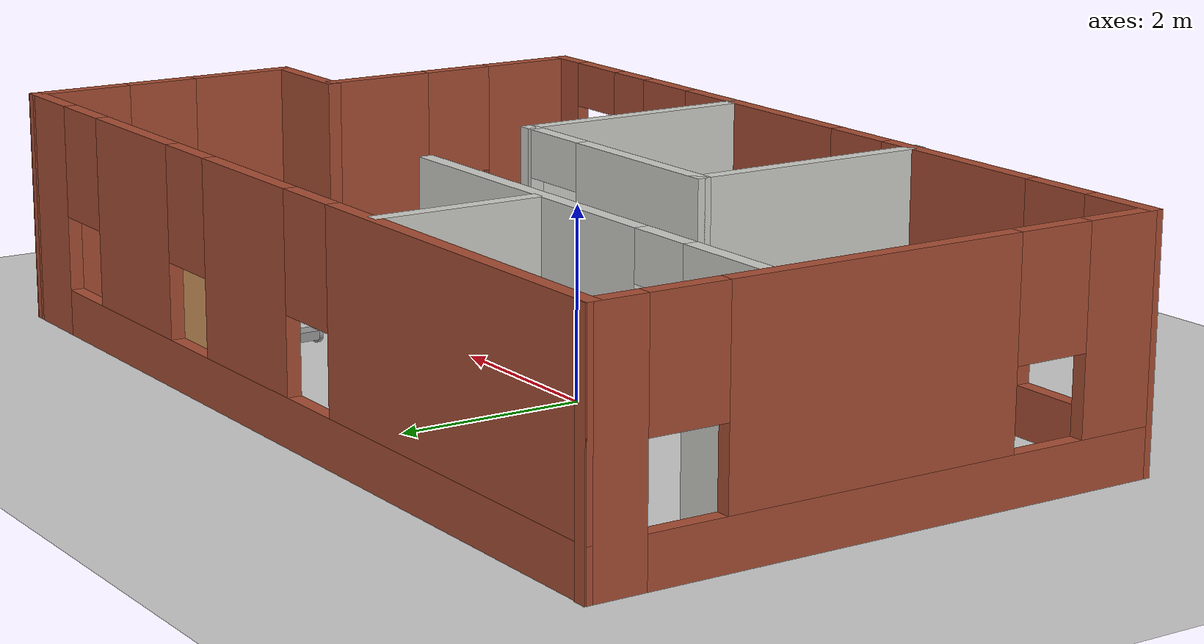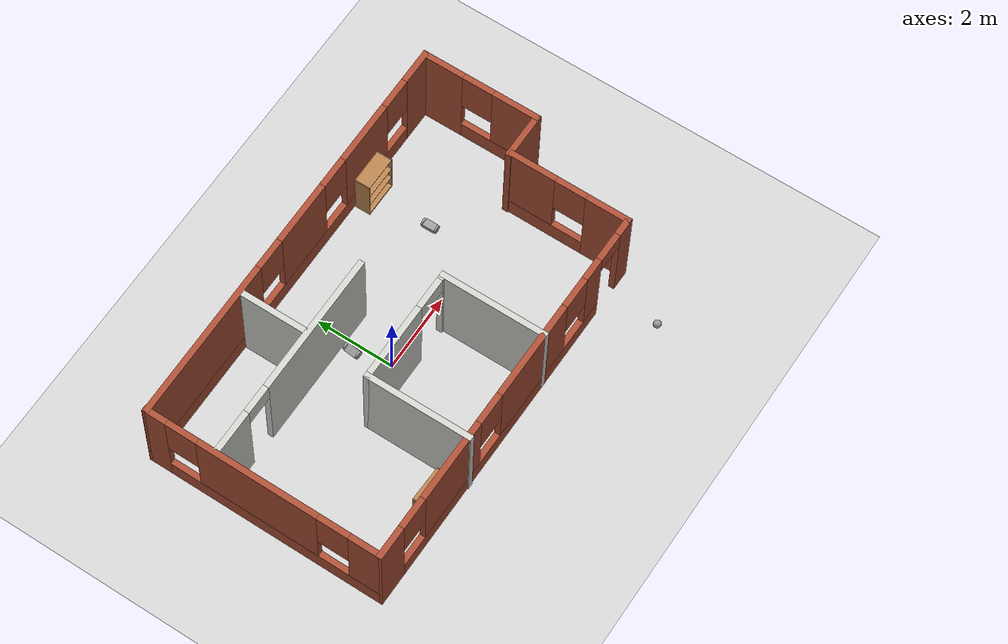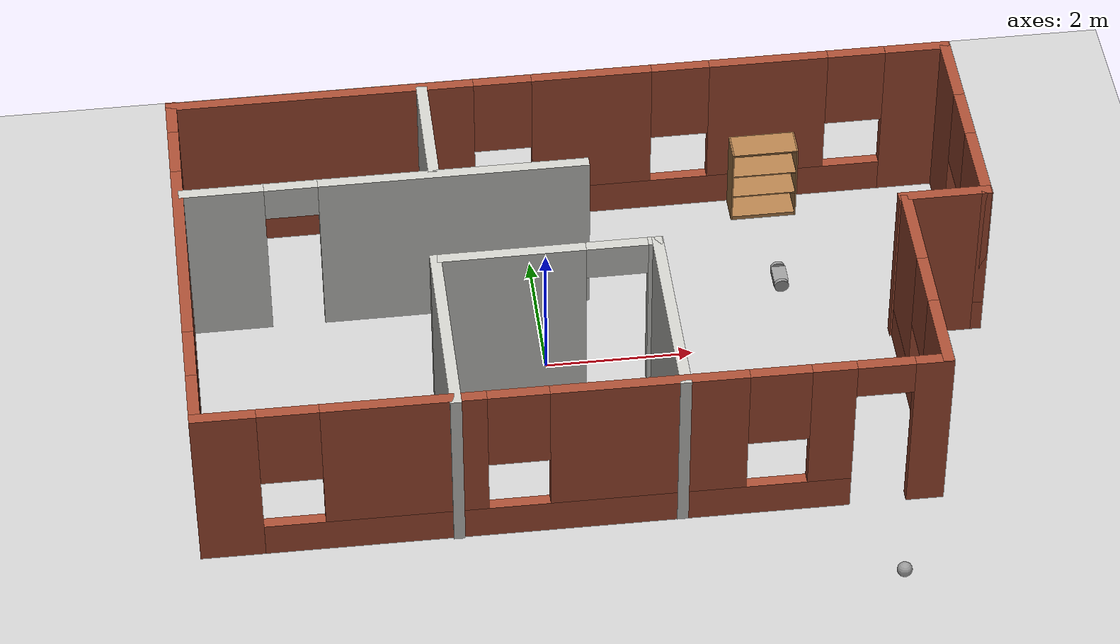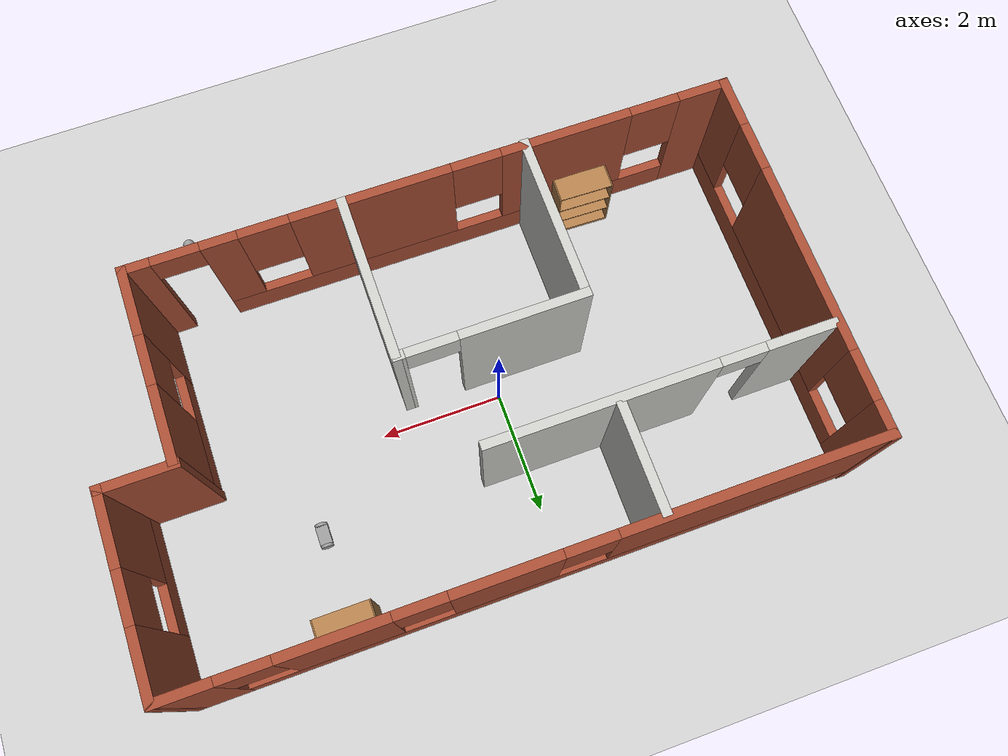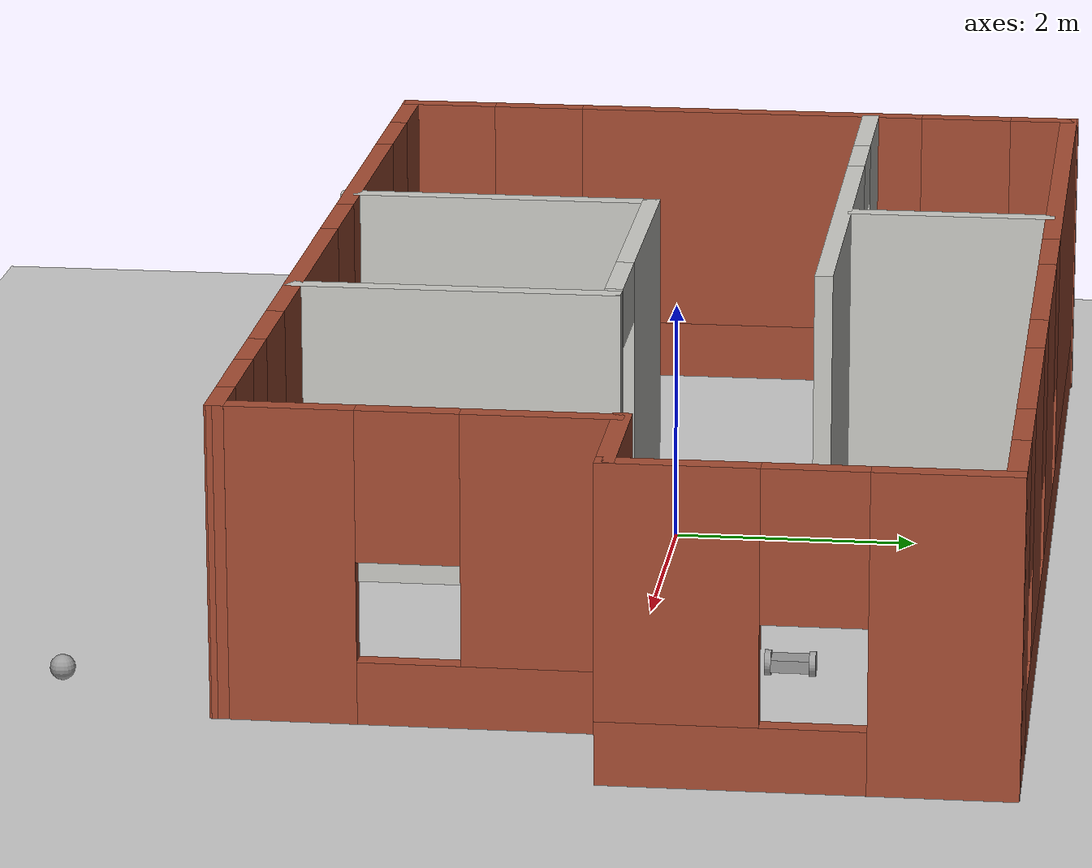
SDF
<sdf version="1.6">
 <world name="default">
  <plugin name="hello" filename="libhello.so"/>
  <light name="sun" type="directional">
   <pose>0 0 10 0 -0 0</pose>
   <diffuse>0.8 0.8 0.8 1</diffuse>
   <specular>0.2 0.2 0.2 1</specular>
   <attenuation>
    <range>1000</range>
    <constant>0.9</constant>
    <linear>0.01</linear>
    <quadratic>0.001</quadratic>
   </attenuation>
   <direction>-0.5 0.1 -0.9</direction>
  </light>
  <model name="ground_plane">
   <static>1</static>
   <link name="link">
    <collision name="collision">
     <geometry><plane><normal>0 0 1</normal><size>100 100</size></plane></geometry>
     <surface><friction><ode><mu>100</mu><mu2>50</mu2></ode></friction></surface>
    </collision>
    <visual name="visual">
     <cast_shadows>0</cast_shadows>
     <geometry><plane><normal>0 0 1</normal><size>100 100</size></plane></geometry>
     <material>
      <script><uri>file://media/materials/scripts/gazebo.material</uri><name>Gazebo/Grey</name></script>
     </material>
    </visual>
   </link>
  </model>
  <gravity>0 0 -9.8</gravity>
  <magnetic_field>6e-06 2.3e-05 -4.2e-05</magnetic_field>
  <atmosphere type="adiabatic"/>
  <physics name="default_physics" default="0" type="ode">
   <max_step_size>0.001</max_step_size>
   <real_time_factor>1</real_time_factor>
   <real_time_update_rate>1000</real_time_update_rate>
  </physics>
  <scene><ambient>0.4 0.4 0.4 1</ambient><background>0.7 0.7 0.7 1</background><shadows>1</shadows></scene>
  <spherical_coordinates>
   <surface_model>EARTH_WGS84</surface_model>
   <latitude_deg>0</latitude_deg>
   <longitude_deg>0</longitude_deg>
   <elevation>0</elevation>
   <heading_deg>0</heading_deg>
  </spherical_coordinates>
  <model name="building">
   <pose>0.56892 0.03593 0 0 -0 0</pose>
   <link name="Wall_1">
    <pose>5.34876 1.53922 0 0 0 -1.5708</pose>
    <visual name="Wall_1_Visual_0">
     <pose>-1.00974 0 1.25 0 -0 0</pose>
     <geometry><box><size>1.12727 0.15 2.5</size></box></geometry>
     <material>
      <script><uri>file://media/materials/scripts/gazebo.material</uri><name>Gazebo/Bricks</name></script>
      <ambient>0.760784 0.662745 0.627451 1</ambient>
     </material>
     <meta><layer>0</layer></meta>
    </visual>
    <collision name="Wall_1_Collision_0">
     <geometry><box><size>1.12727 0.15 2.5</size></box></geometry>
     <pose>-1.00974 0 1.25 0 -0 0</pose>
    </collision>
    <visual name="Wall_1_Visual_1">
     <pose>0.563636 0 0.25 0 -0 0</pose>
     <geometry><box><size>2.01948 0.15 0.5</size></box></geometry>
     <material>
      <script><uri>file://media/materials/scripts/gazebo.material</uri><name>Gazebo/Bricks</name></script>
      <ambient>0.760784 0.662745 0.627451 1</ambient>
     </material>
     <meta><layer>0</layer></meta>
    </visual>
    <collision name="Wall_1_Collision_1">
     <geometry><box><size>2.01948 0.15 0.5</size></box></geometry>
     <pose>0.563636 0 0.25 0 -0 0</pose>
    </collision>
    <visual name="Wall_1_Visual_2">
     <pose>0.963636 0 1.5 0 -0 0</pose>
     <geometry><box><size>1.21948 0.15 2</size></box></geometry>
     <material>
      <script><uri>file://media/materials/scripts/gazebo.material</uri><name>Gazebo/Bricks</name></script>
      <ambient>0.760784 0.662745 0.627451 1</ambient>
     </material>
     <meta><layer>0</layer></meta>
    </visual>
    <collision name="Wall_1_Collision_2">
     <geometry><box><size>1.21948 0.15 2</size></box></geometry>
     <pose>0.963636 0 1.5 0 -0 0</pose>
    </collision>
    <visual name="Wall_1_Visual_3">
     <pose>-0.046104 0 1.9 0 -0 0</pose>
     <geometry><box><size>0.8 0.15 1.2</size></box></geometry>
     <material>
      <script><uri>file://media/materials/scripts/gazebo.material</uri><name>Gazebo/Bricks</name></script>
      <ambient>0.760784 0.662745 0.627451 1</ambient>
     </material>
     <meta><layer>0</layer></meta>
    </visual>
    <collision name="Wall_1_Collision_3">
     <geometry><box><size>0.8 0.15 1.2</size></box></geometry>
     <pose>-0.046104 0 1.9 0 -0 0</pose>
    </collision>
   </link>
   <link name="Wall_10">
    <pose>-5.34324 0.03987 0 0 0 -1.57246</pose>
    <visual name="Wall_10_Visual_0">
     <pose>-2.76797 0 1.25 0 -0 0</pose>
     <geometry><box><size>0.609515 0.15 2.5</size></box></geometry>
     <material>
      <script><uri>file://media/materials/scripts/gazebo.material</uri><name>Gazebo/Bricks</name></script>
      <ambient>0.760784 0.662745 0.627451 1</ambient>
     </material>
     <meta><layer>0</layer></meta>
    </visual>
    <collision name="Wall_10_Collision_0">
     <geometry><box><size>0.609515 0.15 2.5</size></box></geometry>
     <pose>-2.76797 0 1.25 0 -0 0</pose>
    </collision>
    <visual name="Wall_10_Visual_1">
     <pose>0.304757 0 0.25 0 -0 0</pose>
     <geometry><box><size>5.53594 0.15 0.5</size></box></geometry>
     <material>
      <script><uri>file://media/materials/scripts/gazebo.material</uri><name>Gazebo/Bricks</name></script>
      <ambient>0.760784 0.662745 0.627451 1</ambient>
     </material>
     <meta><layer>0</layer></meta>
    </visual>
    <collision name="Wall_10_Collision_1">
     <geometry><box><size>5.53594 0.15 0.5</size></box></geometry>
     <pose>0.304757 0 0.25 0 -0 0</pose>
    </collision>
    <visual name="Wall_10_Visual_2">
     <pose>-0.115297 0 1.5 0 -0 0</pose>
     <geometry><box><size>3.09583 0.15 2</size></box></geometry>
     <material>
      <script><uri>file://media/materials/scripts/gazebo.material</uri><name>Gazebo/Bricks</name></script>
      <ambient>0.760784 0.662745 0.627451 1</ambient>
     </material>
     <meta><layer>0</layer></meta>
    </visual>
    <collision name="Wall_10_Collision_2">
     <geometry><box><size>3.09583 0.15 2</size></box></geometry>
     <pose>-0.115297 0 1.5 0 -0 0</pose>
    </collision>
    <visual name="Wall_10_Visual_3">
     <pose>2.65267 0 1.5 0 -0 0</pose>
     <geometry><box><size>0.840109 0.15 2</size></box></geometry>
     <material>
      <script><uri>file://media/materials/scripts/gazebo.material</uri><name>Gazebo/Bricks</name></script>
      <ambient>0.760784 0.662745 0.627451 1</ambient>
     </material>
     <meta><layer>0</layer></meta>
    </visual>
    <collision name="Wall_10_Collision_3">
     <geometry><box><size>0.840109 0.15 2</size></box></geometry>
     <pose>2.65267 0 1.5 0 -0 0</pose>
    </collision>
    <visual name="Wall_10_Visual_4">
     <pose>-2.06321 0 1.9 0 -0 0</pose>
     <geometry><box><size>0.8 0.15 1.2</size></box></geometry>
     <material>
      <script><uri>file://media/materials/scripts/gazebo.material</uri><name>Gazebo/Bricks</name></script>
      <ambient>0.760784 0.662745 0.627451 1</ambient>
     </material>
     <meta><layer>0</layer></meta>
    </visual>
    <collision name="Wall_10_Collision_4">
     <geometry><box><size>0.8 0.15 1.2</size></box></geometry>
     <pose>-2.06321 0 1.9 0 -0 0</pose>
    </collision>
    <visual name="Wall_10_Visual_5">
     <pose>1.83262 0 1.9 0 -0 0</pose>
     <geometry><box><size>0.8 0.15 1.2</size></box></geometry>
     <material>
      <script><uri>file://media/materials/scripts/gazebo.material</uri><name>Gazebo/Bricks</name></script>
      <ambient>0.760784 0.662745 0.627451 1</ambient>
     </material>
     <meta><layer>0</layer></meta>
    </visual>
    <collision name="Wall_10_Collision_5">
     <geometry><box><size>0.8 0.15 1.2</size></box></geometry>
     <pose>1.83262 0 1.9 0 -0 0</pose>
    </collision>
   </link>
   <link name="Wall_13">
    <pose>-0.548605 -3.00414 0 0 0 -0.006888</pose>
    <visual name="Wall_13_Visual_0">
     <pose>-4.45248 0 1.25 0 -0 0</pose>
     <geometry><box><size>0.844541 0.15 2.5</size></box></geometry>
     <material>
      <script><uri>file://media/materials/scripts/gazebo.material</uri><name>Gazebo/Bricks</name></script>
      <ambient>0.760784 0.662745 0.627451 1</ambient>
     </material>
     <meta><layer>0</layer></meta>
    </visual>
    <collision name="Wall_13_Collision_0">
     <geometry><box><size>0.844541 0.15 2.5</size></box></geometry>
     <pose>-4.45248 0 1.25 0 -0 0</pose>
    </collision>
    <visual name="Wall_13_Visual_1">
     <pose>4.62526 0 1.25 0 -0 0</pose>
     <geometry><box><size>0.498993 0.15 2.5</size></box></geometry>
     <material>
      <script><uri>file://media/materials/scripts/gazebo.material</uri><name>Gazebo/Bricks</name></script>
      <ambient>0.760784 0.662745 0.627451 1</ambient>
     </material>
     <meta><layer>0</layer></meta>
    </visual>
    <collision name="Wall_13_Collision_1">
     <geometry><box><size>0.498993 0.15 2.5</size></box></geometry>
     <pose>4.62526 0 1.25 0 -0 0</pose>
    </collision>
    <visual name="Wall_13_Visual_2">
     <pose>-0.202226 0 0.25 0 -0 0</pose>
     <geometry><box><size>7.65597 0.15 0.5</size></box></geometry>
     <material>
      <script><uri>file://media/materials/scripts/gazebo.material</uri><name>Gazebo/Bricks</name></script>
      <ambient>0.760784 0.662745 0.627451 1</ambient>
     </material>
     <meta><layer>0</layer></meta>
    </visual>
    <collision name="Wall_13_Collision_2">
     <geometry><box><size>7.65597 0.15 0.5</size></box></geometry>
     <pose>-0.202226 0 0.25 0 -0 0</pose>
    </collision>
    <visual name="Wall_13_Visual_3">
     <pose>-2.17118 0 1.5 0 -0 0</pose>
     <geometry><box><size>2.11806 0.15 2</size></box></geometry>
     <material>
      <script><uri>file://media/materials/scripts/gazebo.material</uri><name>Gazebo/Bricks</name></script>
      <ambient>0.760784 0.662745 0.627451 1</ambient>
     </material>
     <meta><layer>0</layer></meta>
    </visual>
    <collision name="Wall_13_Collision_3">
     <geometry><box><size>2.11806 0.15 2</size></box></geometry>
     <pose>-2.17118 0 1.5 0 -0 0</pose>
    </collision>
    <visual name="Wall_13_Visual_4">
     <pose>0.966898 0 1.5 0 -0 0</pose>
     <geometry><box><size>2.55809 0.15 2</size></box></geometry>
     <material>
      <script><uri>file://media/materials/scripts/gazebo.material</uri><name>Gazebo/Bricks</name></script>
      <ambient>0.760784 0.662745 0.627451 1</ambient>
     </material>
     <meta><layer>0</layer></meta>
    </visual>
    <collision name="Wall_13_Collision_4">
     <geometry><box><size>2.55809 0.15 2</size></box></geometry>
     <pose>0.966898 0 1.5 0 -0 0</pose>
    </collision>
    <visual name="Wall_13_Visual_5">
     <pose>3.33585 0 1.5 0 -0 0</pose>
     <geometry><box><size>0.579815 0.15 2</size></box></geometry>
     <material>
      <script><uri>file://media/materials/scripts/gazebo.material</uri><name>Gazebo/Bricks</name></script>
      <ambient>0.760784 0.662745 0.627451 1</ambient>
     </material>
     <meta><layer>0</layer></meta>
    </visual>
    <collision name="Wall_13_Collision_5">
     <geometry><box><size>0.579815 0.15 2</size></box></geometry>
     <pose>3.33585 0 1.5 0 -0 0</pose>
    </collision>
    <visual name="Wall_13_Visual_6">
     <pose>-3.63021 0 1.9 0 -0 0</pose>
     <geometry><box><size>0.8 0.15 1.2</size></box></geometry>
     <material>
      <script><uri>file://media/materials/scripts/gazebo.material</uri><name>Gazebo/Bricks</name></script>
      <ambient>0.760784 0.662745 0.627451 1</ambient>
     </material>
     <meta><layer>0</layer></meta>
    </visual>
    <collision name="Wall_13_Collision_6">
     <geometry><box><size>0.8 0.15 1.2</size></box></geometry>
     <pose>-3.63021 0 1.9 0 -0 0</pose>
    </collision>
    <visual name="Wall_13_Visual_7">
     <pose>-0.712146 0 1.9 0 -0 0</pose>
     <geometry><box><size>0.8 0.15 1.2</size></box></geometry>
     <material>
      <script><uri>file://media/materials/scripts/gazebo.material</uri><name>Gazebo/Bricks</name></script>
      <ambient>0.760784 0.662745 0.627451 1</ambient>
     </material>
     <meta><layer>0</layer></meta>
    </visual>
    <collision name="Wall_13_Collision_7">
     <geometry><box><size>0.8 0.15 1.2</size></box></geometry>
     <pose>-0.712146 0 1.9 0 -0 0</pose>
    </collision>
    <visual name="Wall_13_Visual_8">
     <pose>2.64594 0 1.9 0 -0 0</pose>
     <geometry><box><size>0.8 0.15 1.2</size></box></geometry>
     <material>
      <script><uri>file://media/materials/scripts/gazebo.material</uri><name>Gazebo/Bricks</name></script>
      <ambient>0.760784 0.662745 0.627451 1</ambient>
     </material>
     <meta><layer>0</layer></meta>
    </visual>
    <collision name="Wall_13_Collision_8">
     <geometry><box><size>0.8 0.15 1.2</size></box></geometry>
     <pose>2.64594 0 1.9 0 -0 0</pose>
    </collision>
    <visual name="Wall_13_Visual_9">
     <pose>4.00076 0 2.25 0 -0 0</pose>
     <geometry><box><size>0.75 0.15 0.5</size></box></geometry>
     <material>
      <script><uri>file://media/materials/scripts/gazebo.material</uri><name>Gazebo/Bricks</name></script>
      <ambient>0.760784 0.662745 0.627451 1</ambient>
     </material>
     <meta><layer>0</layer></meta>
    </visual>
    <collision name="Wall_13_Collision_9">
     <geometry><box><size>0.75 0.15 0.5</size></box></geometry>
     <pose>4.00076 0 2.25 0 -0 0</pose>
    </collision>
   </link>
   <link name="Wall_14">
    <pose>4.25603 -1.51802 0 0 -0 1.56748</pose>
    <visual name="Wall_14_Visual_0">
     <pose>-1.01809 0 1.25 0 -0 0</pose>
     <geometry><box><size>1.12576 0.15 2.5</size></box></geometry>
     <material>
      <script><uri>file://media/materials/scripts/gazebo.material</uri><name>Gazebo/Bricks</name></script>
      <ambient>0.760784 0.662745 0.627451 1</ambient>
     </material>
     <meta><layer>0</layer></meta>
    </visual>
    <collision name="Wall_14_Collision_0">
     <geometry><box><size>1.12576 0.15 2.5</size></box></geometry>
     <pose>-1.01809 0 1.25 0 -0 0</pose>
    </collision>
    <visual name="Wall_14_Visual_1">
     <pose>0.562881 0 0.25 0 -0 0</pose>
     <geometry><box><size>2.03618 0.15 0.5</size></box></geometry>
     <material>
      <script><uri>file://media/materials/scripts/gazebo.material</uri><name>Gazebo/Bricks</name></script>
      <ambient>0.760784 0.662745 0.627451 1</ambient>
     </material>
     <meta><layer>0</layer></meta>
    </visual>
    <collision name="Wall_14_Collision_1">
     <geometry><box><size>2.03618 0.15 0.5</size></box></geometry>
     <pose>0.562881 0 0.25 0 -0 0</pose>
    </collision>
    <visual name="Wall_14_Visual_2">
     <pose>0.962881 0 1.5 0 -0 0</pose>
     <geometry><box><size>1.23618 0.15 2</size></box></geometry>
     <material>
      <script><uri>file://media/materials/scripts/gazebo.material</uri><name>Gazebo/Bricks</name></script>
      <ambient>0.760784 0.662745 0.627451 1</ambient>
     </material>
     <meta><layer>0</layer></meta>
    </visual>
    <collision name="Wall_14_Collision_2">
     <geometry><box><size>1.23618 0.15 2</size></box></geometry>
     <pose>0.962881 0 1.5 0 -0 0</pose>
    </collision>
    <visual name="Wall_14_Visual_3">
     <pose>-0.055208 0 1.9 0 -0 0</pose>
     <geometry><box><size>0.8 0.15 1.2</size></box></geometry>
     <material>
      <script><uri>file://media/materials/scripts/gazebo.material</uri><name>Gazebo/Bricks</name></script>
      <ambient>0.760784 0.662745 0.627451 1</ambient>
     </material>
     <meta><layer>0</layer></meta>
    </visual>
    <collision name="Wall_14_Collision_3">
     <geometry><box><size>0.8 0.15 1.2</size></box></geometry>
     <pose>-0.055208 0 1.9 0 -0 0</pose>
    </collision>
   </link>
   <link name="Wall_16">
    <pose>-2.57969 1.2373 0 0 -0 0</pose>
    <visual name="Wall_16_Visual_0">
     <pose>-2.185 0 1.25 0 -0 0</pose>
     <geometry><box><size>1.13 0.15 2.5</size></box></geometry>
     <material>
      <script><uri>file://media/materials/scripts/gazebo.material</uri><name>Gazebo/CeilingTiled</name></script>
      <ambient>0.760784 0.662745 0.627451 1</ambient>
     </material>
     <meta><layer>0</layer></meta>
    </visual>
    <collision name="Wall_16_Collision_0">
     <geometry><box><size>1.13 0.15 2.5</size></box></geometry>
     <pose>-2.185 0 1.25 0 -0 0</pose>
    </collision>
    <visual name="Wall_16_Visual_1">
     <pose>0.925 0 1.25 0 -0 0</pose>
     <geometry><box><size>3.65 0.15 2.5</size></box></geometry>
     <material>
      <script><uri>file://media/materials/scripts/gazebo.material</uri><name>Gazebo/CeilingTiled</name></script>
      <ambient>0.760784 0.662745 0.627451 1</ambient>
     </material>
     <meta><layer>0</layer></meta>
    </visual>
    <collision name="Wall_16_Collision_1">
     <geometry><box><size>3.65 0.15 2.5</size></box></geometry>
     <pose>0.925 0 1.25 0 -0 0</pose>
    </collision>
    <visual name="Wall_16_Visual_2">
     <pose>-1.26 0 2.25 0 -0 0</pose>
     <geometry><box><size>0.72 0.15 0.5</size></box></geometry>
     <material>
      <script><uri>file://media/materials/scripts/gazebo.material</uri><name>Gazebo/CeilingTiled</name></script>
      <ambient>0.760784 0.662745 0.627451 1</ambient>
     </material>
     <meta><layer>0</layer></meta>
    </visual>
    <collision name="Wall_16_Collision_2">
     <geometry><box><size>0.72 0.15 0.5</size></box></geometry>
     <pose>-1.26 0 2.25 0 -0 0</pose>
    </collision>
   </link>
   <link name="Wall_18">
    <collision name="Wall_18_Collision">
     <geometry><box><size>1.75 0.15 2.5</size></box></geometry>
     <pose>0 0 1.25 0 -0 0</pose>
    </collision>
    <visual name="Wall_18_Visual">
     <pose>0 0 1.25 0 -0 0</pose>
     <geometry><box><size>1.75 0.15 2.5</size></box></geometry>
     <material>
      <script><uri>file://media/materials/scripts/gazebo.material</uri><name>Gazebo/CeilingTiled</name></script>
      <ambient>0.760784 0.662745 0.627451 1</ambient>
     </material>
     <meta><layer>0</layer></meta>
    </visual>
    <pose>-1.91892 2.15727 0 0 -0 1.5708</pose>
   </link>
   <link name="Wall_2">
    <collision name="Wall_2_Collision">
     <geometry><box><size>1.25 0.15 2.5</size></box></geometry>
     <pose>0 0 1.25 0 -0 0</pose>
    </collision>
    <visual name="Wall_2_Visual">
     <pose>0 0 1.25 0 -0 0</pose>
     <geometry><box><size>1.25 0.15 2.5</size></box></geometry>
     <material>
      <script><uri>file://media/materials/scripts/gazebo.material</uri><name>Gazebo/Bricks</name></script>
      <ambient>0.760784 0.662745 0.627451 1</ambient>
     </material>
     <meta><layer>0</layer></meta>
    </visual>
    <pose>4.78553 0.040845 0 0 -0 3.14159</pose>
   </link>
   <link name="Wall_21">
    <pose>-0.600218 -0.41593 0 0 -0 3.14159</pose>
    <visual name="Wall_21_Visual_0">
     <pose>-1.43751 0 1.25 0 -0 0</pose>
     <geometry><box><size>0.192376 0.15 2.5</size></box></geometry>
     <material>
      <script><uri>file://media/materials/scripts/gazebo.material</uri><name>Gazebo/CeilingTiled</name></script>
      <ambient>0.760784 0.662745 0.627451 1</ambient>
     </material>
     <meta><layer>0</layer></meta>
    </visual>
    <collision name="Wall_21_Collision_0">
     <geometry><box><size>0.192376 0.15 2.5</size></box></geometry>
     <pose>-1.43751 0 1.25 0 -0 0</pose>
    </collision>
    <visual name="Wall_21_Visual_1">
     <pose>0.506188 0 1.25 0 -0 0</pose>
     <geometry><box><size>2.05502 0.15 2.5</size></box></geometry>
     <material>
      <script><uri>file://media/materials/scripts/gazebo.material</uri><name>Gazebo/CeilingTiled</name></script>
      <ambient>0.760784 0.662745 0.627451 1</ambient>
     </material>
     <meta><layer>0</layer></meta>
    </visual>
    <collision name="Wall_21_Collision_1">
     <geometry><box><size>2.05502 0.15 2.5</size></box></geometry>
     <pose>0.506188 0 1.25 0 -0 0</pose>
    </collision>
    <visual name="Wall_21_Visual_2">
     <pose>-0.931324 0 2.25 0 -0 0</pose>
     <geometry><box><size>0.82 0.15 0.5</size></box></geometry>
     <material>
      <script><uri>file://media/materials/scripts/gazebo.material</uri><name>Gazebo/CeilingTiled</name></script>
      <ambient>0.760784 0.662745 0.627451 1</ambient>
     </material>
     <meta><layer>0</layer></meta>
    </visual>
    <collision name="Wall_21_Collision_2">
     <geometry><box><size>0.82 0.15 0.5</size></box></geometry>
     <pose>-0.931324 0 2.25 0 -0 0</pose>
    </collision>
   </link>
   <link name="Wall_24">
    <collision name="Wall_24_Collision">
     <geometry><box><size>2.75 0.15 2.5</size></box></geometry>
     <pose>0 0 1.25 0 -0 0</pose>
    </collision>
    <visual name="Wall_24_Visual">
     <pose>0 0 1.25 0 -0 0</pose>
     <geometry><box><size>2.75 0.15 2.5</size></box></geometry>
     <material>
      <script><uri>file://media/materials/scripts/gazebo.material</uri><name>Gazebo/CeilingTiled</name></script>
      <ambient>0.760784 0.662745 0.627451 1</ambient>
     </material>
     <meta><layer>0</layer></meta>
    </visual>
    <pose>-2.05892 -1.71593 0 0 0 -1.5708</pose>
   </link>
   <link name="Wall_26">
    <collision name="Wall_26_Collision">
     <geometry><box><size>2.75 0.15 2.5</size></box></geometry>
     <pose>0 0 1.25 0 -0 0</pose>
    </collision>
    <visual name="Wall_26_Visual">
     <pose>0 0 1.25 0 -0 0</pose>
     <geometry><box><size>2.75 0.15 2.5</size></box></geometry>
     <material>
      <script><uri>file://media/materials/scripts/gazebo.material</uri><name>Gazebo/CeilingTiled</name></script>
      <ambient>0.760784 0.662745 0.627451 1</ambient>
     </material>
     <meta><layer>0</layer></meta>
    </visual>
    <pose>0.871707 -1.71593 0 0 0 -1.5708</pose>
   </link>
   <link name="Wall_9">
    <pose>-0.001355 3.03098 0 0 0 -3.14035</pose>
    <visual name="Wall_9_Visual_0">
     <pose>-4.9586 0 1.25 0 -0 0</pose>
     <geometry><box><size>0.90659 0.15 2.5</size></box></geometry>
     <material>
      <script><uri>file://media/materials/scripts/gazebo.material</uri><name>Gazebo/Bricks</name></script>
      <ambient>0.760784 0.662745 0.627451 1</ambient>
     </material>
     <meta><layer>0</layer></meta>
    </visual>
    <collision name="Wall_9_Collision_0">
     <geometry><box><size>0.90659 0.15 2.5</size></box></geometry>
     <pose>-4.9586 0 1.25 0 -0 0</pose>
    </collision>
    <visual name="Wall_9_Visual_1">
     <pose>0.453295 0 0.25 0 -0 0</pose>
     <geometry><box><size>9.91719 0.15 0.5</size></box></geometry>
     <material>
      <script><uri>file://media/materials/scripts/gazebo.material</uri><name>Gazebo/Bricks</name></script>
      <ambient>0.760784 0.662745 0.627451 1</ambient>
     </material>
     <meta><layer>0</layer></meta>
    </visual>
    <collision name="Wall_9_Collision_1">
     <geometry><box><size>9.91719 0.15 0.5</size></box></geometry>
     <pose>0.453295 0 0.25 0 -0 0</pose>
    </collision>
    <visual name="Wall_9_Visual_2">
     <pose>-2.87958 0 1.5 0 -0 0</pose>
     <geometry><box><size>1.65145 0.15 2</size></box></geometry>
     <material>
      <script><uri>file://media/materials/scripts/gazebo.material</uri><name>Gazebo/Bricks</name></script>
      <ambient>0.760784 0.662745 0.627451 1</ambient>
     </material>
     <meta><layer>0</layer></meta>
    </visual>
    <collision name="Wall_9_Collision_2">
     <geometry><box><size>1.65145 0.15 2</size></box></geometry>
     <pose>-2.87958 0 1.5 0 -0 0</pose>
    </collision>
    <visual name="Wall_9_Visual_3">
     <pose>-0.42226 0 1.5 0 -0 0</pose>
     <geometry><box><size>1.66318 0.15 2</size></box></geometry>
     <material>
      <script><uri>file://media/materials/scripts/gazebo.material</uri><name>Gazebo/Bricks</name></script>
      <ambient>0.760784 0.662745 0.627451 1</ambient>
     </material>
     <meta><layer>0</layer></meta>
    </visual>
    <collision name="Wall_9_Collision_3">
     <geometry><box><size>1.66318 0.15 2</size></box></geometry>
     <pose>-0.42226 0 1.5 0 -0 0</pose>
    </collision>
    <visual name="Wall_9_Visual_4">
     <pose>3.31061 0 1.5 0 -0 0</pose>
     <geometry><box><size>4.20256 0.15 2</size></box></geometry>
     <material>
      <script><uri>file://media/materials/scripts/gazebo.material</uri><name>Gazebo/Bricks</name></script>
      <ambient>0.760784 0.662745 0.627451 1</ambient>
     </material>
     <meta><layer>0</layer></meta>
    </visual>
    <collision name="Wall_9_Collision_4">
     <geometry><box><size>4.20256 0.15 2</size></box></geometry>
     <pose>3.31061 0 1.5 0 -0 0</pose>
    </collision>
    <visual name="Wall_9_Visual_5">
     <pose>-4.1053 0 1.9 0 -0 0</pose>
     <geometry><box><size>0.8 0.15 1.2</size></box></geometry>
     <material>
      <script><uri>file://media/materials/scripts/gazebo.material</uri><name>Gazebo/Bricks</name></script>
      <ambient>0.760784 0.662745 0.627451 1</ambient>
     </material>
     <meta><layer>0</layer></meta>
    </visual>
    <collision name="Wall_9_Collision_5">
     <geometry><box><size>0.8 0.15 1.2</size></box></geometry>
     <pose>-4.1053 0 1.9 0 -0 0</pose>
    </collision>
    <visual name="Wall_9_Visual_6">
     <pose>-1.65385 0 1.9 0 -0 0</pose>
     <geometry><box><size>0.8 0.15 1.2</size></box></geometry>
     <material>
      <script><uri>file://media/materials/scripts/gazebo.material</uri><name>Gazebo/Bricks</name></script>
      <ambient>0.760784 0.662745 0.627451 1</ambient>
     </material>
     <meta><layer>0</layer></meta>
    </visual>
    <collision name="Wall_9_Collision_6">
     <geometry><box><size>0.8 0.15 1.2</size></box></geometry>
     <pose>-1.65385 0 1.9 0 -0 0</pose>
    </collision>
    <visual name="Wall_9_Visual_7">
     <pose>0.809331 0 1.9 0 -0 0</pose>
     <geometry><box><size>0.8 0.15 1.2</size></box></geometry>
     <material>
      <script><uri>file://media/materials/scripts/gazebo.material</uri><name>Gazebo/Bricks</name></script>
      <ambient>0.760784 0.662745 0.627451 1</ambient>
     </material>
     <meta><layer>0</layer></meta>
    </visual>
    <collision name="Wall_9_Collision_7">
     <geometry><box><size>0.8 0.15 1.2</size></box></geometry>
     <pose>0.809331 0 1.9 0 -0 0</pose>
    </collision>
   </link>
   <static>1</static>
  </model>
  <model name="bookshelf">
   <static>1</static>
   <link name="link">
    <inertial><mass>1</mass></inertial>
    <collision name="back">
     <pose>0 0.005 0.6 0 -0 0</pose>
     <geometry><box><size>0.9 0.01 1.2</size></box></geometry>
    </collision>
    <visual name="visual1">
     <pose>0 0.005 0.6 0 -0 0</pose>
     <geometry><box><size>0.9 0.01 1.2</size></box></geometry>
     <material>
      <script><uri>file://media/materials/scripts/gazebo.material</uri><name>Gazebo/Wood</name></script>
     </material>
    </visual>
    <collision name="left_side">
     <pose>0.45 -0.195 0.6 0 -0 0</pose>
     <geometry><box><size>0.02 0.4 1.2</size></box></geometry>
    </collision>
    <visual name="visual2">
     <pose>0.45 -0.195 0.6 0 -0 0</pose>
     <geometry><box><size>0.02 0.4 1.2</size></box></geometry>
     <material>
      <script><uri>file://media/materials/scripts/gazebo.material</uri><name>Gazebo/Wood</name></script>
     </material>
    </visual>
    <collision name="right_side">
     <pose>-0.45 -0.195 0.6 0 -0 0</pose>
     <geometry><box><size>0.02 0.4 1.2</size></box></geometry>
    </collision>
    <visual name="visual3">
     <pose>-0.45 -0.195 0.6 0 -0 0</pose>
     <geometry><box><size>0.02 0.4 1.2</size></box></geometry>
     <material>
      <script><uri>file://media/materials/scripts/gazebo.material</uri><name>Gazebo/Wood</name></script>
     </material>
    </visual>
    <collision name="bottom">
     <pose>0 -0.195 0.03 0 -0 0</pose>
     <geometry><box><size>0.88 0.4 0.06</size></box></geometry>
    </collision>
    <visual name="visual4">
     <pose>0 -0.195 0.03 0 -0 0</pose>
     <geometry><box><size>0.88 0.4 0.06</size></box></geometry>
     <material>
      <script><uri>file://media/materials/scripts/gazebo.material</uri><name>Gazebo/Wood</name></script>
     </material>
    </visual>
    <collision name="top">
     <pose>0 -0.195 1.19 0 -0 0</pose>
     <geometry><box><size>0.88 0.4 0.02</size></box></geometry>
    </collision>
    <visual name="visual5">
     <pose>0 -0.195 1.19 0 -0 0</pose>
     <geometry><box><size>0.88 0.4 0.02</size></box></geometry>
     <material>
      <script><uri>file://media/materials/scripts/gazebo.material</uri><name>Gazebo/Wood</name></script>
     </material>
    </visual>
    <collision name="low_shelf">
     <pose>0 -0.195 0.43 0 -0 0</pose>
     <geometry><box><size>0.88 0.4 0.02</size></box></geometry>
    </collision>
    <visual name="visual6">
     <pose>0 -0.195 0.43 0 -0 0</pose>
     <geometry><box><size>0.88 0.4 0.02</size></box></geometry>
     <material>
      <script><uri>file://media/materials/scripts/gazebo.material</uri><name>Gazebo/Wood</name></script>
     </material>
    </visual>
    <collision name="high_shelf">
     <pose>0 -0.195 0.8 0 -0 0</pose>
     <geometry><box><size>0.88 0.4 0.02</size></box></geometry>
    </collision>
    <visual name="visual7">
     <pose>0 -0.195 0.8 0 -0 0</pose>
     <geometry><box><size>0.88 0.4 0.02</size></box></geometry>
     <material>
      <script><uri>file://media/materials/scripts/gazebo.material</uri><name>Gazebo/Wood</name></script>
     </material>
    </visual>
   </link>
   <pose>3.38009 2.97414 0 0 -0 0</pose>
  </model>
  <model name="bookshelf_0">
   <static>1</static>
   <link name="link">
    <inertial><mass>1</mass></inertial>
    <collision name="back">
     <pose>0 0.005 0.6 0 -0 0</pose>
     <geometry><box><size>0.9 0.01 1.2</size></box></geometry>
    </collision>
    <visual name="visual1">
     <pose>0 0.005 0.6 0 -0 0</pose>
     <geometry><box><size>0.9 0.01 1.2</size></box></geometry>
     <material>
      <script><uri>file://media/materials/scripts/gazebo.material</uri><name>Gazebo/Wood</name></script>
     </material>
    </visual>
    <collision name="left_side">
     <pose>0.45 -0.195 0.6 0 -0 0</pose>
     <geometry><box><size>0.02 0.4 1.2</size></box></geometry>
    </collision>
    <visual name="visual2">
     <pose>0.45 -0.195 0.6 0 -0 0</pose>
     <geometry><box><size>0.02 0.4 1.2</size></box></geometry>
     <material>
      <script><uri>file://media/materials/scripts/gazebo.material</uri><name>Gazebo/Wood</name></script>
     </material>
    </visual>
    <collision name="right_side">
     <pose>-0.45 -0.195 0.6 0 -0 0</pose>
     <geometry><box><size>0.02 0.4 1.2</size></box></geometry>
    </collision>
    <visual name="visual3">
     <pose>-0.45 -0.195 0.6 0 -0 0</pose>
     <geometry><box><size>0.02 0.4 1.2</size></box></geometry>
     <material>
      <script><uri>file://media/materials/scripts/gazebo.material</uri><name>Gazebo/Wood</name></script>
     </material>
    </visual>
    <collision name="bottom">
     <pose>0 -0.195 0.03 0 -0 0</pose>
     <geometry><box><size>0.88 0.4 0.06</size></box></geometry>
    </collision>
    <visual name="visual4">
     <pose>0 -0.195 0.03 0 -0 0</pose>
     <geometry><box><size>0.88 0.4 0.06</size></box></geometry>
     <material>
      <script><uri>file://media/materials/scripts/gazebo.material</uri><name>Gazebo/Wood</name></script>
     </material>
    </visual>
    <collision name="top">
     <pose>0 -0.195 1.19 0 -0 0</pose>
     <geometry><box><size>0.88 0.4 0.02</size></box></geometry>
    </collision>
    <visual name="visual5">
     <pose>0 -0.195 1.19 0 -0 0</pose>
     <geometry><box><size>0.88 0.4 0.02</size></box></geometry>
     <material>
      <script><uri>file://media/materials/scripts/gazebo.material</uri><name>Gazebo/Wood</name></script>
     </material>
    </visual>
    <collision name="low_shelf">
     <pose>0 -0.195 0.43 0 -0 0</pose>
     <geometry><box><size>0.88 0.4 0.02</size></box></geometry>
    </collision>
    <visual name="visual6">
     <pose>0 -0.195 0.43 0 -0 0</pose>
     <geometry><box><size>0.88 0.4 0.02</size></box></geometry>
     <material>
      <script><uri>file://media/materials/scripts/gazebo.material</uri><name>Gazebo/Wood</name></script>
     </material>
    </visual>
    <collision name="high_shelf">
     <pose>0 -0.195 0.8 0 -0 0</pose>
     <geometry><box><size>0.88 0.4 0.02</size></box></geometry>
    </collision>
    <visual name="visual7">
     <pose>0 -0.195 0.8 0 -0 0</pose>
     <geometry><box><size>0.88 0.4 0.02</size></box></geometry>
     <material>
      <script><uri>file://media/materials/scripts/gazebo.material</uri><name>Gazebo/Wood</name></script>
     </material>
    </visual>
   </link>
   <pose>-2.43355 -2.87182 0 0 -0 3.10935</pose>
  </model>
  <model name="robot_1">
   <link name="link_0">
    <pose>0 1e-06 0 0 -0 0</pose>
    <inertial>
     <mass>1</mass>
     <inertia>
      <ixx>0.166667</ixx>
      <ixy>0</ixy>
      <ixz>0</ixz>
      <iyy>0.166667</iyy>
      <iyz>0</iyz>
      <izz>0.166667</izz>
     </inertia>
    </inertial>
    <visual name="visual">
     <geometry><box><size>0.2 0.3 0.1</size></box></geometry>
     <material>
      <lighting>1</lighting>
      <script><uri>file://media/materials/scripts/gazebo.material</uri><name>Gazebo/Grey</name></script>
      <shader type="pixel"><normal_map>__default__</normal_map></shader>
      <ambient>0.3 0.3 0.3 1</ambient>
      <diffuse>0.7 0.7 0.7 1</diffuse>
      <specular>0.01 0.01 0.01 1</specular>
      <emissive>0 0 0 1</emissive>
     </material>
    </visual>
    <collision name="collision">
     <geometry><box><size>0.2 0.3 0.1</size></box></geometry>
     <surface>
      <friction>
       <ode><mu>1</mu><mu2>1</mu2><fdir1>0 0 0</fdir1><slip1>0</slip1><slip2>0</slip2></ode>
       <torsional>
        <coefficient>1</coefficient>
        <patch_radius>0</patch_radius>
        <surface_radius>0</surface_radius>
        <use_patch_radius>1</use_patch_radius>
        <ode><slip>0</slip></ode>
       </torsional>
      </friction>
      <bounce><restitution_coefficient>0</restitution_coefficient><threshold>1e+06</threshold></bounce>
      <contact>
       <collide_without_contact>0</collide_without_contact>
       <collide_without_contact_bitmask>1</collide_without_contact_bitmask>
       <collide_bitmask>1</collide_bitmask>
       <ode>
        <soft_cfm>0</soft_cfm>
        <soft_erp>0.2</soft_erp>
        <kp>1e+13</kp>
        <kd>1</kd>
        <max_vel>0.01</max_vel>
        <min_depth>0</min_depth>
       </ode>
       <bullet>
        <split_impulse>1</split_impulse>
        <split_impulse_penetration_threshold>-0.01</split_impulse_penetration_threshold>
        <soft_cfm>0</soft_cfm>
        <soft_erp>0.2</soft_erp>
        <kp>1e+13</kp>
        <kd>1</kd>
       </bullet>
      </contact>
     </surface>
    </collision>
   </link>
   <link name="link_1_clone_clone">
    <pose>0 0.175011 0 1.5707 -0 0</pose>
    <inertial>
     <mass>1</mass>
     <inertia><ixx>0.145833</ixx><ixy>0</ixy><ixz>0</ixz><iyy>0.145833</iyy><iyz>0</iyz><izz>0.125</izz></inertia>
    </inertial>
    <visual name="visual">
     <geometry><cylinder><radius>0.1</radius><length>0.05</length></cylinder></geometry>
     <material>
      <lighting>1</lighting>
      <script><uri>file://media/materials/scripts/gazebo.material</uri><name>Gazebo/Grey</name></script>
      <shader type="pixel"><normal_map>__default__</normal_map></shader>
      <ambient>0.3 0.3 0.3 1</ambient>
      <diffuse>0.7 0.7 0.7 1</diffuse>
      <specular>0.01 0.01 0.01 1</specular>
      <emissive>0 0 0 1</emissive>
     </material>
    </visual>
    <collision name="collision">
     <geometry><cylinder><radius>0.1</radius><length>0.04</length></cylinder></geometry>
     <surface>
      <friction>
       <ode><mu>1</mu><mu2>1</mu2><fdir1>0 0 0</fdir1><slip1>0</slip1><slip2>0</slip2></ode>
       <torsional>
        <coefficient>1</coefficient>
        <patch_radius>0</patch_radius>
        <surface_radius>0</surface_radius>
        <use_patch_radius>1</use_patch_radius>
        <ode><slip>0</slip></ode>
       </torsional>
      </friction>
      <bounce><restitution_coefficient>0</restitution_coefficient><threshold>1e+06</threshold></bounce>
      <contact>
       <collide_without_contact>0</collide_without_contact>
       <collide_without_contact_bitmask>1</collide_without_contact_bitmask>
       <collide_bitmask>1</collide_bitmask>
       <ode>
        <soft_cfm>0</soft_cfm>
        <soft_erp>0.2</soft_erp>
        <kp>1e+13</kp>
        <kd>1</kd>
        <max_vel>0.01</max_vel>
        <min_depth>0</min_depth>
       </ode>
       <bullet>
        <split_impulse>1</split_impulse>
        <split_impulse_penetration_threshold>-0.01</split_impulse_penetration_threshold>
        <soft_cfm>0</soft_cfm>
        <soft_erp>0.2</soft_erp>
        <kp>1e+13</kp>
        <kd>1</kd>
       </bullet>
      </contact>
     </surface>
    </collision>
   </link>
   <link name="link_1_clone_clone_clone">
    <pose>0 -0.175009 0 1.5707 -0 0</pose>
    <inertial>
     <mass>1</mass>
     <inertia><ixx>0.145833</ixx><ixy>0</ixy><ixz>0</ixz><iyy>0.145833</iyy><iyz>0</iyz><izz>0.125</izz></inertia>
    </inertial>
    <visual name="visual">
     <geometry><cylinder><radius>0.1</radius><length>0.05</length></cylinder></geometry>
     <material>
      <lighting>1</lighting>
      <script><uri>file://media/materials/scripts/gazebo.material</uri><name>Gazebo/Grey</name></script>
      <shader type="pixel"><normal_map>__default__</normal_map></shader>
      <ambient>0.3 0.3 0.3 1</ambient>
      <diffuse>0.7 0.7 0.7 1</diffuse>
      <specular>0.01 0.01 0.01 1</specular>
      <emissive>0 0 0 1</emissive>
     </material>
    </visual>
    <collision name="collision">
     <geometry><cylinder><radius>0.1</radius><length>0.04</length></cylinder></geometry>
     <surface>
      <friction>
       <ode><mu>1</mu><mu2>1</mu2><fdir1>0 0 0</fdir1><slip1>0</slip1><slip2>0</slip2></ode>
       <torsional>
        <coefficient>1</coefficient>
        <patch_radius>0</patch_radius>
        <surface_radius>0</surface_radius>
        <use_patch_radius>1</use_patch_radius>
        <ode><slip>0</slip></ode>
       </torsional>
      </friction>
      <bounce><restitution_coefficient>0</restitution_coefficient><threshold>1e+06</threshold></bounce>
      <contact>
       <collide_without_contact>0</collide_without_contact>
       <collide_without_contact_bitmask>1</collide_without_contact_bitmask>
       <collide_bitmask>1</collide_bitmask>
       <ode>
        <soft_cfm>0</soft_cfm>
        <soft_erp>0.2</soft_erp>
        <kp>1e+13</kp>
        <kd>1</kd>
        <max_vel>0.01</max_vel>
        <min_depth>0</min_depth>
       </ode>
       <bullet>
        <split_impulse>1</split_impulse>
        <split_impulse_penetration_threshold>-0.01</split_impulse_penetration_threshold>
        <soft_cfm>0</soft_cfm>
        <soft_erp>0.2</soft_erp>
        <kp>1e+13</kp>
        <kd>1</kd>
       </bullet>
      </contact>
     </surface>
    </collision>
   </link>
   <joint name="link_0_JOINT_2" type="revolute">
    <parent>link_0</parent>
    <child>link_1_clone_clone</child>
    <axis>
     <xyz>0 0 1</xyz>
     <use_parent_model_frame>0</use_parent_model_frame>
     <limit>
      <lower>-1.79769e+308</lower>
      <upper>1.79769e+308</upper>
      <effort>-1</effort>
      <velocity>-1</velocity>
     </limit>
     <dynamics>
      <spring_reference>0</spring_reference>
      <spring_stiffness>0</spring_stiffness>
      <damping>0</damping>
      <friction>0</friction>
     </dynamics>
    </axis>
    <physics>
     <ode><limit><cfm>0</cfm><erp>0.2</erp></limit><suspension><cfm>0</cfm><erp>0.2</erp></suspension></ode>
    </physics>
   </joint>
   <joint name="link_0_JOINT_4" type="revolute">
    <parent>link_0</parent>
    <child>link_1_clone_clone_clone</child>
    <axis>
     <xyz>0 0 1</xyz>
     <use_parent_model_frame>0</use_parent_model_frame>
     <limit>
      <lower>-1.79769e+308</lower>
      <upper>1.79769e+308</upper>
      <effort>-1</effort>
      <velocity>-1</velocity>
     </limit>
     <dynamics>
      <spring_reference>0</spring_reference>
      <spring_stiffness>0</spring_stiffness>
      <damping>0</damping>
     </dynamics>
    </axis>
    <physics>
     <ode><limit><cfm>0</cfm><erp>0.2</erp></limit><suspension><cfm>0</cfm><erp>0.2</erp></suspension></ode>
    </physics>
   </joint>
   <static>0</static>
   <pose>-0.214343 0.929778 0.100002 -3.14159 -0.495528 -0.103918</pose>
  </model>
  <model name="robot_1_clone">
   <link name="link_0">
    <pose>0 1e-06 0 0 -0 0</pose>
    <inertial>
     <mass>1</mass>
     <inertia>
      <ixx>0.166667</ixx>
      <ixy>0</ixy>
      <ixz>0</ixz>
      <iyy>0.166667</iyy>
      <iyz>0</iyz>
      <izz>0.166667</izz>
     </inertia>
    </inertial>
    <visual name="visual">
     <geometry><box><size>0.2 0.3 0.1</size></box></geometry>
     <material>
      <lighting>1</lighting>
      <script><uri>file://media/materials/scripts/gazebo.material</uri><name>Gazebo/Grey</name></script>
      <shader type="pixel"><normal_map>__default__</normal_map></shader>
      <ambient>0.3 0.3 0.3 1</ambient>
      <diffuse>0.7 0.7 0.7 1</diffuse>
      <specular>0.01 0.01 0.01 1</specular>
      <emissive>0 0 0 1</emissive>
     </material>
    </visual>
    <collision name="collision">
     <geometry><box><size>0.2 0.3 0.1</size></box></geometry>
     <surface>
      <friction>
       <ode><mu>1</mu><mu2>1</mu2><fdir1>0 0 0</fdir1><slip1>0</slip1><slip2>0</slip2></ode>
       <torsional>
        <coefficient>1</coefficient>
        <patch_radius>0</patch_radius>
        <surface_radius>0</surface_radius>
        <use_patch_radius>1</use_patch_radius>
        <ode><slip>0</slip></ode>
       </torsional>
      </friction>
      <bounce><restitution_coefficient>0</restitution_coefficient><threshold>1e+06</threshold></bounce>
      <contact>
       <collide_without_contact>0</collide_without_contact>
       <collide_without_contact_bitmask>1</collide_without_contact_bitmask>
       <collide_bitmask>1</collide_bitmask>
       <ode>
        <soft_cfm>0</soft_cfm>
        <soft_erp>0.2</soft_erp>
        <kp>1e+13</kp>
        <kd>1</kd>
        <max_vel>0.01</max_vel>
        <min_depth>0</min_depth>
       </ode>
       <bullet>
        <split_impulse>1</split_impulse>
        <split_impulse_penetration_threshold>-0.01</split_impulse_penetration_threshold>
        <soft_cfm>0</soft_cfm>
        <soft_erp>0.2</soft_erp>
        <kp>1e+13</kp>
        <kd>1</kd>
       </bullet>
      </contact>
     </surface>
    </collision>
   </link>
   <link name="link_1_clone_clone">
    <pose>0 0.175011 0 1.5707 -0 0</pose>
    <inertial>
     <mass>1</mass>
     <inertia><ixx>0.145833</ixx><ixy>0</ixy><ixz>0</ixz><iyy>0.145833</iyy><iyz>0</iyz><izz>0.125</izz></inertia>
    </inertial>
    <visual name="visual">
     <geometry><cylinder><radius>0.1</radius><length>0.05</length></cylinder></geometry>
     <material>
      <lighting>1</lighting>
      <script><uri>file://media/materials/scripts/gazebo.material</uri><name>Gazebo/Grey</name></script>
      <shader type="pixel"><normal_map>__default__</normal_map></shader>
      <ambient>0.3 0.3 0.3 1</ambient>
      <diffuse>0.7 0.7 0.7 1</diffuse>
      <specular>0.01 0.01 0.01 1</specular>
      <emissive>0 0 0 1</emissive>
     </material>
    </visual>
    <collision name="collision">
     <geometry><cylinder><radius>0.1</radius><length>0.04</length></cylinder></geometry>
     <surface>
      <friction>
       <ode><mu>1</mu><mu2>1</mu2><fdir1>0 0 0</fdir1><slip1>0</slip1><slip2>0</slip2></ode>
       <torsional>
        <coefficient>1</coefficient>
        <patch_radius>0</patch_radius>
        <surface_radius>0</surface_radius>
        <use_patch_radius>1</use_patch_radius>
        <ode><slip>0</slip></ode>
       </torsional>
      </friction>
      <bounce><restitution_coefficient>0</restitution_coefficient><threshold>1e+06</threshold></bounce>
      <contact>
       <collide_without_contact>0</collide_without_contact>
       <collide_without_contact_bitmask>1</collide_without_contact_bitmask>
       <collide_bitmask>1</collide_bitmask>
       <ode>
        <soft_cfm>0</soft_cfm>
        <soft_erp>0.2</soft_erp>
        <kp>1e+13</kp>
        <kd>1</kd>
        <max_vel>0.01</max_vel>
        <min_depth>0</min_depth>
       </ode>
       <bullet>
        <split_impulse>1</split_impulse>
        <split_impulse_penetration_threshold>-0.01</split_impulse_penetration_threshold>
        <soft_cfm>0</soft_cfm>
        <soft_erp>0.2</soft_erp>
        <kp>1e+13</kp>
        <kd>1</kd>
       </bullet>
      </contact>
     </surface>
    </collision>
   </link>
   <link name="link_1_clone_clone_clone">
    <pose>0 -0.175009 0 1.5707 -0 0</pose>
    <inertial>
     <mass>1</mass>
     <inertia><ixx>0.145833</ixx><ixy>0</ixy><ixz>0</ixz><iyy>0.145833</iyy><iyz>0</iyz><izz>0.125</izz></inertia>
    </inertial>
    <visual name="visual">
     <geometry><cylinder><radius>0.1</radius><length>0.05</length></cylinder></geometry>
     <material>
      <lighting>1</lighting>
      <script><uri>file://media/materials/scripts/gazebo.material</uri><name>Gazebo/Grey</name></script>
      <shader type="pixel"><normal_map>__default__</normal_map></shader>
      <ambient>0.3 0.3 0.3 1</ambient>
      <diffuse>0.7 0.7 0.7 1</diffuse>
      <specular>0.01 0.01 0.01 1</specular>
      <emissive>0 0 0 1</emissive>
     </material>
    </visual>
    <collision name="collision">
     <geometry><cylinder><radius>0.1</radius><length>0.04</length></cylinder></geometry>
     <surface>
      <friction>
       <ode><mu>1</mu><mu2>1</mu2><fdir1>0 0 0</fdir1><slip1>0</slip1><slip2>0</slip2></ode>
       <torsional>
        <coefficient>1</coefficient>
        <patch_radius>0</patch_radius>
        <surface_radius>0</surface_radius>
        <use_patch_radius>1</use_patch_radius>
        <ode><slip>0</slip></ode>
       </torsional>
      </friction>
      <bounce><restitution_coefficient>0</restitution_coefficient><threshold>1e+06</threshold></bounce>
      <contact>
       <collide_without_contact>0</collide_without_contact>
       <collide_without_contact_bitmask>1</collide_without_contact_bitmask>
       <collide_bitmask>1</collide_bitmask>
       <ode>
        <soft_cfm>0</soft_cfm>
        <soft_erp>0.2</soft_erp>
        <kp>1e+13</kp>
        <kd>1</kd>
        <max_vel>0.01</max_vel>
        <min_depth>0</min_depth>
       </ode>
       <bullet>
        <split_impulse>1</split_impulse>
        <split_impulse_penetration_threshold>-0.01</split_impulse_penetration_threshold>
        <soft_cfm>0</soft_cfm>
        <soft_erp>0.2</soft_erp>
        <kp>1e+13</kp>
        <kd>1</kd>
       </bullet>
      </contact>
     </surface>
    </collision>
   </link>
   <joint name="link_0_JOINT_2" type="revolute">
    <parent>link_0</parent>
    <child>link_1_clone_clone</child>
    <axis>
     <xyz>0 0 1</xyz>
     <use_parent_model_frame>0</use_parent_model_frame>
     <limit>
      <lower>-1.79769e+308</lower>
      <upper>1.79769e+308</upper>
      <effort>-1</effort>
      <velocity>-1</velocity>
     </limit>
     <dynamics>
      <spring_reference>0</spring_reference>
      <spring_stiffness>0</spring_stiffness>
      <damping>0</damping>
      <friction>0</friction>
     </dynamics>
    </axis>
    <physics>
     <ode><limit><cfm>0</cfm><erp>0.2</erp></limit><suspension><cfm>0</cfm><erp>0.2</erp></suspension></ode>
    </physics>
   </joint>
   <joint name="link_0_JOINT_4" type="revolute">
    <parent>link_0</parent>
    <child>link_1_clone_clone_clone</child>
    <axis>
     <xyz>0 0 1</xyz>
     <use_parent_model_frame>0</use_parent_model_frame>
     <limit>
      <lower>-1.79769e+308</lower>
      <upper>1.79769e+308</upper>
      <effort>-1</effort>
      <velocity>-1</velocity>
     </limit>
     <dynamics>
      <spring_reference>0</spring_reference>
      <spring_stiffness>0</spring_stiffness>
      <damping>0</damping>
     </dynamics>
    </axis>
    <physics>
     <ode><limit><cfm>0</cfm><erp>0.2</erp></limit><suspension><cfm>0</cfm><erp>0.2</erp></suspension></ode>
    </physics>
   </joint>
   <static>0</static>
   <pose>3.40022 1.24753 0.099995 2e-06 -0 0</pose>
  </model>
  <model name="my_ball">
   <link name="link_0">
    <inertial>
     <mass>1</mass>
     <inertia><ixx>0.1</ixx><ixy>0</ixy><ixz>0</ixz><iyy>0.1</iyy><iyz>0</iyz><izz>0.1</izz></inertia>
    </inertial>
    <visual name="visual">
     <geometry><sphere><radius>0.1</radius></sphere></geometry>
     <material>
      <lighting>1</lighting>
      <script><uri>file://media/materials/scripts/gazebo.material</uri><name>Gazebo/Grey</name></script>
      <shader type="pixel"><normal_map>__default__</normal_map></shader>
      <ambient>1 1 1 1</ambient>
      <diffuse>1 1 1 1</diffuse>
      <specular>1 1 1 1</specular>
      <emissive>1 1 1 1</emissive>
     </material>
    </visual>
    <collision name="collision">
     <geometry><sphere><radius>0.1</radius></sphere></geometry>
     <surface>
      <friction>
       <ode><mu>1</mu><mu2>1</mu2><fdir1>0 0 0</fdir1><slip1>0</slip1><slip2>0</slip2></ode>
       <torsional>
        <coefficient>1</coefficient>
        <patch_radius>0</patch_radius>
        <surface_radius>0</surface_radius>
        <use_patch_radius>1</use_patch_radius>
        <ode><slip>0</slip></ode>
       </torsional>
      </friction>
      <bounce><restitution_coefficient>0</restitution_coefficient><threshold>1e+06</threshold></bounce>
      <contact>
       <collide_without_contact>0</collide_without_contact>
       <collide_without_contact_bitmask>1</collide_without_contact_bitmask>
       <collide_bitmask>1</collide_bitmask>
       <ode>
        <soft_cfm>0</soft_cfm>
        <soft_erp>0.2</soft_erp>
        <kp>1e+13</kp>
        <kd>1</kd>
        <max_vel>0.01</max_vel>
        <min_depth>0</min_depth>
       </ode>
       <bullet>
        <split_impulse>1</split_impulse>
        <split_impulse_penetration_threshold>-0.01</split_impulse_penetration_threshold>
        <soft_cfm>0</soft_cfm>
        <soft_erp>0.2</soft_erp>
        <kp>1e+13</kp>
        <kd>1</kd>
       </bullet>
      </contact>
     </surface>
    </collision>
   </link>
   <static>0</static>
   <pose>4.14065 -4.37754 0.1 0 -0 0</pose>
  </model>
 </world>
</sdf>
